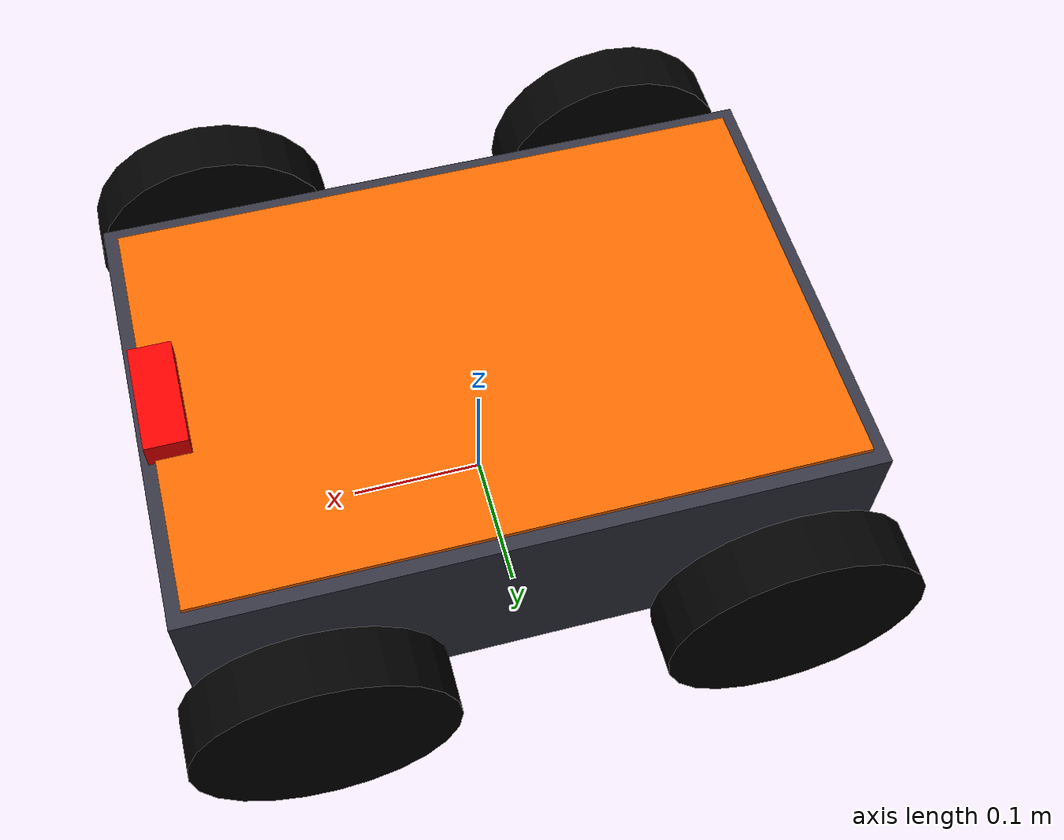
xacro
<?xml version="1.0"?>
<robot name="follower_bot" xmlns:xacro="http://www.ros.org/wiki/xacro">

  <xacro:include filename="$(find leader_follower_bot)/urdf/inertia_macros.xacro" />
  <xacro:include filename="$(find leader_follower_bot)/urdf/camera.xacro" />

  <link name="base_footprint"/>

  <joint name="base_joint" type="fixed">
    <parent link="base_footprint"/>
    <child link="base_link"/>
    <origin xyz="0 0 0.1" rpy="0 0 0"/>
  </joint>

  <link name="base_link">
    <visual>
      <geometry><box size="0.48 0.32 0.15"/></geometry>
      <!-- CHANGED: Dark Grey / Metallic Body Color -->
      <material name="dark_grey"><color rgba="0.2 0.2 0.25 1.0"/></material>
    </visual>
    <collision>
      <geometry><box size="0.48 0.32 0.15"/></geometry>
    </collision>
    <xacro:inertial_box mass="3.5" x="0.48" y="0.32" z="0.15">
      <origin xyz="0 0 0" rpy="0 0 0"/>
    </xacro:inertial_box>
  </link>

  <!-- Accent Trim Plate on top for visual contrast -->
  <joint name="accent_plate_joint" type="fixed">
    <parent link="base_link"/>
    <child link="accent_plate"/>
    <origin xyz="0 0 0.076" rpy="0 0 0"/>
  </joint>
  <link name="accent_plate">
    <visual>
      <geometry><box size="0.46 0.30 0.005"/></geometry>
      <material name="accent_orange"><color rgba="1.0 0.4 0.0 1.0"/></material>
    </visual>
  </link>

  <joint name="front_left_wheel_joint" type="continuous">
    <parent link="base_link"/>
    <child link="front_left_wheel"/>
    <origin xyz="0.16 0.21 0" rpy="-1.5708 0 0"/>
    <axis xyz="0 0 1"/>
  </joint>
  <link name="front_left_wheel">
    <visual><geometry><cylinder radius="0.09" length="0.04"/></geometry><material name="black"><color rgba="0 0 0 1"/></material></visual>
    <collision><geometry><cylinder radius="0.09" length="0.04"/></geometry></collision>
    <xacro:inertial_cylinder mass="0.4" length="0.04" radius="0.09"><origin xyz="0 0 0" rpy="0 0 0"/></xacro:inertial_cylinder>
  </link>

  <joint name="front_right_wheel_joint" type="continuous">
    <parent link="base_link"/>
    <child link="front_right_wheel"/>
    <origin xyz="0.16 -0.21 0" rpy="-1.5708 0 0"/>
    <axis xyz="0 0 1"/>
  </joint>
  <link name="front_right_wheel">
    <visual><geometry><cylinder radius="0.09" length="0.04"/></geometry><material name="black"><color rgba="0 0 0 1"/></material></visual>
    <collision><geometry><cylinder radius="0.09" length="0.04"/></geometry></collision>
    <xacro:inertial_cylinder mass="0.4" length="0.04" radius="0.09"><origin xyz="0 0 0" rpy="0 0 0"/></xacro:inertial_cylinder>
  </link>

  <joint name="rear_left_wheel_joint" type="continuous">
    <parent link="base_link"/>
    <child link="rear_left_wheel"/>
    <origin xyz="-0.16 0.21 0" rpy="-1.5708 0 0"/>
    <axis xyz="0 0 1"/>
  </joint>
  <link name="rear_left_wheel">
    <visual><geometry><cylinder radius="0.09" length="0.04"/></geometry><material name="black"><color rgba="0 0 0 1"/></material></visual>
    <collision><geometry><cylinder radius="0.09" length="0.04"/></geometry></collision>
    <xacro:inertial_cylinder mass="0.4" length="0.04" radius="0.09"><origin xyz="0 0 0" rpy="0 0 0"/></xacro:inertial_cylinder>
  </link>

  <joint name="rear_right_wheel_joint" type="continuous">
    <parent link="base_link"/>
    <child link="rear_right_wheel"/>
    <origin xyz="-0.16 -0.21 0" rpy="-1.5708 0 0"/>
    <axis xyz="0 0 1"/>
  </joint>
  <link name="rear_right_wheel">
    <visual><geometry><cylinder radius="0.09" length="0.04"/></geometry><material name="black"><color rgba="0 0 0 1"/></material></visual>
    <collision><geometry><cylinder radius="0.09" length="0.04"/></geometry></collision>
    <xacro:inertial_cylinder mass="0.4" length="0.04" radius="0.09"><origin xyz="0 0 0" rpy="0 0 0"/></xacro:inertial_cylinder>
  </link>

  <!-- Gazebo Material Overrides -->
  <gazebo reference="base_link">
    <material>Gazebo/DarkGrey</material>
  </gazebo>
  <gazebo reference="accent_plate">
    <material>Gazebo/Orange</material>
  </gazebo>

  <gazebo reference="front_left_wheel"><mu1>0.8</mu1><mu2>0.3</mu2></gazebo>
  <gazebo reference="front_right_wheel"><mu1>0.8</mu1><mu2>0.3</mu2></gazebo>
  <gazebo reference="rear_left_wheel"><mu1>0.8</mu1><mu2>0.3</mu2></gazebo>
  <gazebo reference="rear_right_wheel"><mu1>0.8</mu1><mu2>0.3</mu2></gazebo>

  <xacro:camera_sensor parent_link="base_link" />

  <gazebo>
    <plugin filename="gz-sim-diff-drive-system" name="gz::sim::systems::DiffDrive">
      <left_joint>front_left_wheel_joint</left_joint>
      <left_joint>rear_left_wheel_joint</left_joint>
      <right_joint>front_right_wheel_joint</right_joint>
      <right_joint>rear_right_wheel_joint</right_joint>
      <wheel_separation>0.42</wheel_separation>
      <wheel_radius>0.09</wheel_radius>
      <topic>/follower/cmd_vel</topic>
      <odom_topic>/follower/odom</odom_topic>
      <tf_topic>/follower/tf</tf_topic>
      <frame_id>odom</frame_id>
      <child_frame_id>base_footprint</child_frame_id>
    </plugin>
  </gazebo>

</robot>

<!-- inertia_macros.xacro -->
<robot xmlns:xacro="http://www.ros.org/wiki/xacro">

  <xacro:macro name="inertial_box" params="mass x y z *origin">
    <inertial>
      <xacro:insert_block name="origin" />
      <mass value="${mass}" />
      <inertia ixx="${(1/12) * mass * (y*y + z*z)}" ixy="0.0" ixz="0.0"
               iyy="${(1/12) * mass * (x*x + z*z)}" iyz="0.0"
               izz="${(1/12) * mass * (x*x + y*y)}" />
    </inertial>
  </xacro:macro>

  <xacro:macro name="inertial_cylinder" params="mass length radius *origin">
    <inertial>
      <xacro:insert_block name="origin" />
      <mass value="${mass}" />
      <inertia ixx="${(1/12) * mass * (3*radius*radius + length*length)}" ixy="0.0" ixz="0.0"
               iyy="${(1/12) * mass * (3*radius*radius + length*length)}" iyz="0.0"
               izz="${(1/2) * mass * radius * radius}" />
    </inertial>
  </xacro:macro>

</robot>

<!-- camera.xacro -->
<robot xmlns:xacro="http://www.ros.org/wiki/xacro">

  <xacro:macro name="camera_sensor" params="parent_link">
    <joint name="camera_joint" type="fixed">
      <parent link="${parent_link}"/>
      <child link="camera_link"/>
      <origin xyz="0.22 0 0.08" rpy="0 0 0"/>
    </joint>

    <link name="camera_link">
      <visual>
        <geometry>
          <box size="0.03 0.08 0.03"/>
        </geometry>
        <material name="red">
          <color rgba="1 0 0 1"/>
        </material>
      </visual>
      <collision>
        <geometry>
          <box size="0.03 0.08 0.03"/>
        </geometry>
      </collision>
      <xacro:inertial_box mass="0.05" x="0.03" y="0.08" z="0.03">
        <origin xyz="0 0 0" rpy="0 0 0"/>
      </xacro:inertial_box>
    </link>

    <gazebo reference="camera_link">
      <sensor name="camera" type="camera">
        <always_on>true</always_on>
        <update_rate>30</update_rate>
        <topic>/follower/camera/image_raw</topic>
        <camera>
          <horizontal_fov>1.25</horizontal_fov>
          <image>
            <width>640</width>
            <height>480</height>
            <format>R8G8B8</format>
          </image>
          <clip>
            <near>0.01</near>
            <far>12.0</far>
          </clip>
        </camera>
      </sensor>
    </gazebo>
  </xacro:macro>

</robot>
